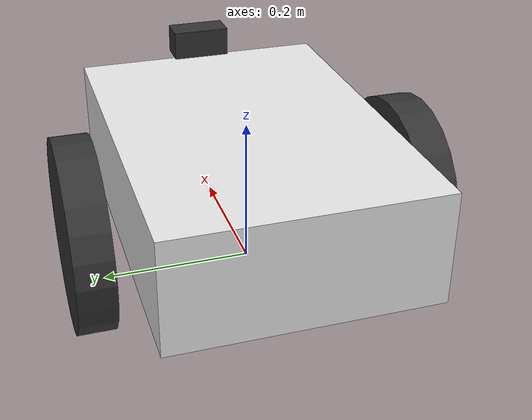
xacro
<?xml version="1.0"?>
<robot name="robot" xmlns:xacro="http://www.ros.org/wiki/xacro">

  <xacro:arg name="robot_ns" default="robot"/>
  <xacro:property name="robot_ns" value="$(arg robot_ns)"/>

  <!-- ─── Links ─────────────────────────────────────────────────────── -->

  <link name="base_footprint"/>

  <joint name="base_footprint_joint" type="fixed">
    <parent link="base_footprint"/>
    <child link="base_link"/>
    <origin xyz="0 0 0.13" rpy="0 0 0"/>
  </joint>

  <link name="base_link">
    <visual>
      <geometry><box size="0.50 0.35 0.15"/></geometry>
      <material name="white"><color rgba="0.9 0.9 0.9 1"/></material>
    </visual>
    <collision>
      <geometry><box size="0.50 0.35 0.15"/></geometry>
    </collision>
    <inertial>
      <mass value="20.0"/>
      <inertia ixx="0.5" ixy="0" ixz="0" iyy="0.8" iyz="0" izz="0.8"/>
    </inertial>
  </link>

  <!-- Left wheel -->
  <joint name="left_wheel_joint" type="continuous">
    <parent link="base_link"/>
    <child link="left_wheel"/>
    <origin xyz="0 0.225 -0.055" rpy="-1.5708 0 0"/>
    <axis xyz="0 0 1"/>
  </joint>
  <link name="left_wheel">
    <visual>
      <geometry><cylinder radius="0.13" length="0.05"/></geometry>
      <material name="dark"><color rgba="0.2 0.2 0.2 1"/></material>
    </visual>
    <collision>
      <geometry><cylinder radius="0.13" length="0.05"/></geometry>
    </collision>
    <inertial>
      <mass value="1.5"/>
      <inertia ixx="0.005" ixy="0" ixz="0" iyy="0.005" iyz="0" izz="0.009"/>
    </inertial>
  </link>

  <!-- Right wheel -->
  <joint name="right_wheel_joint" type="continuous">
    <parent link="base_link"/>
    <child link="right_wheel"/>
    <origin xyz="0 -0.225 -0.055" rpy="-1.5708 0 0"/>
    <axis xyz="0 0 1"/>
  </joint>
  <link name="right_wheel">
    <visual>
      <geometry><cylinder radius="0.13" length="0.05"/></geometry>
      <material name="dark"><color rgba="0.2 0.2 0.2 1"/></material>
    </visual>
    <collision>
      <geometry><cylinder radius="0.13" length="0.05"/></geometry>
    </collision>
    <inertial>
      <mass value="1.5"/>
      <inertia ixx="0.005" ixy="0" ixz="0" iyy="0.005" iyz="0" izz="0.009"/>
    </inertial>
  </link>

  <!-- Front caster (frictionless) -->
  <joint name="caster_joint" type="fixed">
    <parent link="base_link"/>
    <child link="caster_link"/>
    <origin xyz="0.2 0 -0.12" rpy="0 0 0"/>
  </joint>
  <link name="caster_link">
    <visual>
      <geometry><sphere radius="0.02"/></geometry>
      <material name="dark"><color rgba="0.2 0.2 0.2 1"/></material>
    </visual>
    <collision>
      <geometry><sphere radius="0.02"/></geometry>
    </collision>
    <inertial>
      <mass value="0.1"/>
      <inertia ixx="0.0001" ixy="0" ixz="0" iyy="0.0001" iyz="0" izz="0.0001"/>
    </inertial>
  </link>

  <!-- Forward camera -->
  <joint name="camera_joint" type="fixed">
    <parent link="base_link"/>
    <child link="camera_link"/>
    <origin xyz="0.25 0 0.10" rpy="0 0 0"/>
  </joint>
  <link name="camera_link">
    <visual>
      <geometry><box size="0.04 0.08 0.04"/></geometry>
      <material name="dark"><color rgba="0.2 0.2 0.2 1"/></material>
    </visual>
    <inertial>
      <mass value="0.1"/>
      <inertia ixx="0.0001" ixy="0" ixz="0" iyy="0.0001" iyz="0" izz="0.0001"/>
    </inertial>
  </link>

  <!-- ─── Gazebo properties ──────────────────────────────────────────── -->

  <gazebo reference="left_wheel"><mu1>1.0</mu1><mu2>1.0</mu2></gazebo>
  <gazebo reference="right_wheel"><mu1>1.0</mu1><mu2>1.0</mu2></gazebo>
  <gazebo reference="caster_link"><mu1>0.0</mu1><mu2>0.0</mu2></gazebo>

  <!-- ─── Plugins ───────────────────────────────────────────────────── -->

  <gazebo>
    <plugin name="diff_drive_controller" filename="libgazebo_ros_diff_drive.so">
      <updateRate>50</updateRate>
      <leftJoint>left_wheel_joint</leftJoint>
      <rightJoint>right_wheel_joint</rightJoint>
      <wheelSeparation>0.45</wheelSeparation>
      <wheelDiameter>0.26</wheelDiameter>
      <torque>20</torque>
      <commandTopic>cmd_vel</commandTopic>
      <odometryTopic>odom</odometryTopic>
      <odometryFrame>odom</odometryFrame>
      <robotBaseFrame>base_footprint</robotBaseFrame>
      <robotNamespace>${robot_ns}</robotNamespace>
      <publishWheelTF>false</publishWheelTF>
      <publishOdomTF>true</publishOdomTF>
      <publishWheelJointState>false</publishWheelJointState>
      <legacyMode>false</legacyMode>
    </plugin>
  </gazebo>

  <gazebo>
    <plugin name="gazebo_ros_p3d" filename="libgazebo_ros_p3d.so">
      <frameName>world</frameName>
      <bodyName>base_link</bodyName>
      <topicName>/${robot_ns}/ground_truth</topicName>
      <updateRate>50</updateRate>
    </plugin>
  </gazebo>

  <gazebo reference="camera_link">
    <sensor type="camera" name="front_camera">
      <update_rate>30.0</update_rate>
      <camera name="front_camera">
        <horizontal_fov>1.3962634</horizontal_fov>
        <image>
          <width>320</width>
          <height>224</height>
          <format>R8G8B8</format>
        </image>
        <clip><near>0.02</near><far>300</far></clip>
        <noise><type>gaussian</type><mean>0.0</mean><stddev>0.005</stddev></noise>
      </camera>
      <plugin name="camera_controller" filename="libgazebo_ros_camera.so">
        <alwaysOn>true</alwaysOn>
        <updateRate>0.0</updateRate>
        <robotNamespace>${robot_ns}/vision</robotNamespace>
        <cameraName>camera</cameraName>
        <imageTopicName>image_raw</imageTopicName>
        <cameraInfoTopicName>camera_info</cameraInfoTopicName>
        <frameName>camera_link</frameName>
      </plugin>
    </sensor>
  </gazebo>

</robot>
